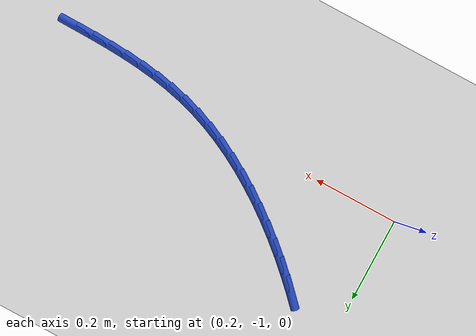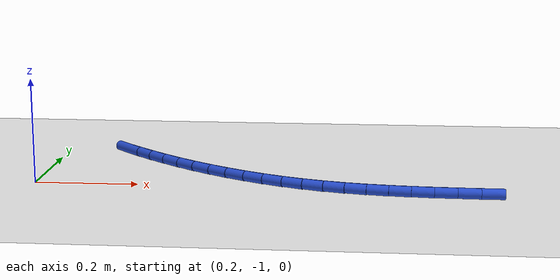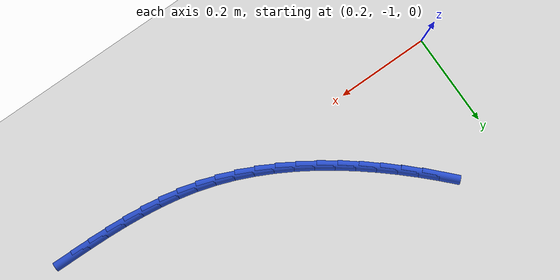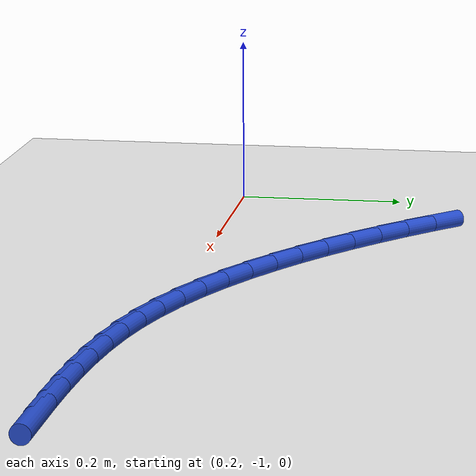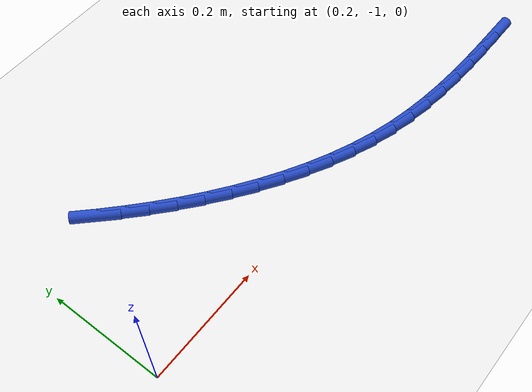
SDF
<sdf version="1.6">
 <world name="default">
  <model name="ground_plane">
   <static>1</static>
   <link name="link">
    <collision name="collision">
     <geometry><plane><normal>0 0 1</normal><size>100 100</size></plane></geometry>
     <surface><friction><ode><mu>100</mu><mu2>50</mu2></ode></friction></surface>
    </collision>
    <visual name="visual">
     <cast_shadows>0</cast_shadows>
     <geometry><plane><normal>0 0 1</normal><size>100 100</size></plane></geometry>
     <material>
      <script><uri>file://media/materials/scripts/gazebo.material</uri><name>Gazebo/WhiteGlow</name></script>
     </material>
    </visual>
   </link>
  </model>
  <model name="line">
   <link name="link_121">
    <pose>1.0421312485021128 -1.0469306811774632 0.01 0 1.57 -0.015314025046229819</pose>
    <collision name="collision">
     <geometry><cylinder><radius>0.01</radius><length>0.08</length></cylinder></geometry>
    </collision>
    <visual name="visual">
     <material>
      <script><name>Gazebo/Blue</name><uri>file://media/materials/scripts/gazebo.material</uri></script>
     </material>
     <geometry><cylinder><radius>0.01</radius><length>0.08</length></cylinder></geometry>
    </visual>
   </link>
   <link name="link_122">
    <pose>0.9992455662872968 -1.0462738774206986 0.01 0 1.57 -0.032252272947527416</pose>
    <collision name="collision">
     <geometry><cylinder><radius>0.01</radius><length>0.08</length></cylinder></geometry>
    </collision>
    <visual name="visual">
     <material>
      <script><name>Gazebo/Blue</name><uri>file://media/materials/scripts/gazebo.material</uri></script>
     </material>
     <geometry><cylinder><radius>0.01</radius><length>0.08</length></cylinder></geometry>
    </visual>
   </link>
   <link name="link_123">
    <pose>0.9570173773594647 -1.0449114499093854 0.01 0 1.57 -0.05647670382661493</pose>
    <collision name="collision">
     <geometry><cylinder><radius>0.01</radius><length>0.08</length></cylinder></geometry>
    </collision>
    <visual name="visual">
     <material>
      <script><name>Gazebo/Blue</name><uri>file://media/materials/scripts/gazebo.material</uri></script>
     </material>
     <geometry><cylinder><radius>0.01</radius><length>0.08</length></cylinder></geometry>
    </visual>
   </link>
   <link name="link_124">
    <pose>0.915423837743727 -1.0425598831596632 0.01 0 1.57 -0.08820557675756319</pose>
    <collision name="collision">
     <geometry><cylinder><radius>0.01</radius><length>0.08</length></cylinder></geometry>
    </collision>
    <visual name="visual">
     <material>
      <script><name>Gazebo/Blue</name><uri>file://media/materials/scripts/gazebo.material</uri></script>
     </material>
     <geometry><cylinder><radius>0.01</radius><length>0.08</length></cylinder></geometry>
    </visual>
   </link>
   <link name="link_125">
    <pose>0.8744421034651939 -1.03893566168767 0.01 0 1.57 -0.12755415599769165</pose>
    <collision name="collision">
     <geometry><cylinder><radius>0.01</radius><length>0.08</length></cylinder></geometry>
    </collision>
    <visual name="visual">
     <material>
      <script><name>Gazebo/Blue</name><uri>file://media/materials/scripts/gazebo.material</uri></script>
     </material>
     <geometry><cylinder><radius>0.01</radius><length>0.08</length></cylinder></geometry>
    </visual>
   </link>
   <link name="link_126">
    <pose>0.8340493305489746 -1.0337552700095438 0.01 0 1.57 -0.17447359039927743</pose>
    <collision name="collision">
     <geometry><cylinder><radius>0.01</radius><length>0.08</length></cylinder></geometry>
    </collision>
    <visual name="visual">
     <material>
      <script><name>Gazebo/Blue</name><uri>file://media/materials/scripts/gazebo.material</uri></script>
     </material>
     <geometry><cylinder><radius>0.01</radius><length>0.08</length></cylinder></geometry>
    </visual>
   </link>
   <link name="link_127">
    <pose>0.7942226750201805 -1.026735192641424 0.01 0 1.57 -0.22868037106302178</pose>
    <collision name="collision">
     <geometry><cylinder><radius>0.01</radius><length>0.08</length></cylinder></geometry>
    </collision>
    <visual name="visual">
     <material>
      <script><name>Gazebo/Blue</name><uri>file://media/materials/scripts/gazebo.material</uri></script>
     </material>
     <geometry><cylinder><radius>0.01</radius><length>0.08</length></cylinder></geometry>
    </visual>
   </link>
   <link name="link_128">
    <pose>0.7549392929039216 -1.017591914099449 0.01 0 1.57 -0.2894220742980537</pose>
    <collision name="collision">
     <geometry><cylinder><radius>0.01</radius><length>0.08</length></cylinder></geometry>
    </collision>
    <visual name="visual">
     <material>
      <script><name>Gazebo/Blue</name><uri>file://media/materials/scripts/gazebo.material</uri></script>
     </material>
     <geometry><cylinder><radius>0.01</radius><length>0.08</length></cylinder></geometry>
    </visual>
   </link>
   <link name="link_129">
    <pose>0.716177366308374 -1.0060492517400126 0.01 0 1.57 -0.3514124167993414</pose>
    <collision name="collision">
     <geometry><cylinder><radius>0.01</radius><length>0.08</length></cylinder></geometry>
    </collision>
    <visual name="visual">
     <material>
      <script><name>Gazebo/Blue</name><uri>file://media/materials/scripts/gazebo.material</uri></script>
     </material>
     <geometry><cylinder><radius>0.01</radius><length>0.08</length></cylinder></geometry>
    </visual>
   </link>
   <link name="link_130">
    <pose>0.6779431206421909 -0.9920314326615823 0.01 0 1.57 -0.4094763573583254</pose>
    <collision name="collision">
     <geometry><cylinder><radius>0.01</radius><length>0.08</length></cylinder></geometry>
    </collision>
    <visual name="visual">
     <material>
      <script><name>Gazebo/Blue</name><uri>file://media/materials/scripts/gazebo.material</uri></script>
     </material>
     <geometry><cylinder><radius>0.01</radius><length>0.08</length></cylinder></geometry>
    </visual>
   </link>
   <link name="link_131">
    <pose>0.6402735406979908 -0.9756825040302396 0.01 0 1.57 -0.46346600192353177</pose>
    <collision name="collision">
     <geometry><cylinder><radius>0.01</radius><length>0.08</length></cylinder></geometry>
    </collision>
    <visual name="visual">
     <material>
      <script><name>Gazebo/Blue</name><uri>file://media/materials/scripts/gazebo.material</uri></script>
     </material>
     <geometry><cylinder><radius>0.01</radius><length>0.08</length></cylinder></geometry>
    </visual>
   </link>
   <link name="link_132">
    <pose>0.6032071820238745 -0.9571577383206168 0.01 0 1.57 -0.5135670640371286</pose>
    <collision name="collision">
     <geometry><cylinder><radius>0.01</radius><length>0.08</length></cylinder></geometry>
    </collision>
    <visual name="visual">
     <material>
      <script><name>Gazebo/Blue</name><uri>file://media/materials/scripts/gazebo.material</uri></script>
     </material>
     <geometry><cylinder><radius>0.01</radius><length>0.08</length></cylinder></geometry>
    </visual>
   </link>
   <link name="link_133">
    <pose>0.5667826001679405 -0.9366124080073451 0.01 0 1.57 -0.5600157013868157</pose>
    <collision name="collision">
     <geometry><cylinder><radius>0.01</radius><length>0.08</length></cylinder></geometry>
    </collision>
    <visual name="visual">
     <material>
      <script><name>Gazebo/Blue</name><uri>file://media/materials/scripts/gazebo.material</uri></script>
     </material>
     <geometry><cylinder><radius>0.01</radius><length>0.08</length></cylinder></geometry>
    </visual>
   </link>
   <link name="link_134">
    <pose>0.5310383506782882 -0.9142017855650567 0.01 0 1.57 -0.6030760952868236</pose>
    <collision name="collision">
     <geometry><cylinder><radius>0.01</radius><length>0.08</length></cylinder></geometry>
    </collision>
    <visual name="visual">
     <material>
      <script><name>Gazebo/Blue</name><uri>file://media/materials/scripts/gazebo.material</uri></script>
     </material>
     <geometry><cylinder><radius>0.01</radius><length>0.08</length></cylinder></geometry>
    </visual>
   </link>
   <link name="link_135">
    <pose>0.49601298910301694 -0.890081143468383 0.01 0 1.57 -0.6430237699057569</pose>
    <collision name="collision">
     <geometry><cylinder><radius>0.01</radius><length>0.08</length></cylinder></geometry>
    </collision>
    <visual name="visual">
     <material>
      <script><name>Gazebo/Blue</name><uri>file://media/materials/scripts/gazebo.material</uri></script>
     </material>
     <geometry><cylinder><radius>0.01</radius><length>0.08</length></cylinder></geometry>
    </visual>
   </link>
   <link name="link_136">
    <pose>0.46174507099022544 -0.8644057541919552 0.01 0 1.57 -0.6801339415768802</pose>
    <collision name="collision">
     <geometry><cylinder><radius>0.01</radius><length>0.08</length></cylinder></geometry>
    </collision>
    <visual name="visual">
     <material>
      <script><name>Gazebo/Blue</name><uri>file://media/materials/scripts/gazebo.material</uri></script>
     </material>
     <geometry><cylinder><radius>0.01</radius><length>0.08</length></cylinder></geometry>
    </visual>
   </link>
   <link name="link_137">
    <pose>0.42827315188801407 -0.8373308902104061 0.01 0 1.57 -0.7146739435697675</pose>
    <collision name="collision">
     <geometry><cylinder><radius>0.01</radius><length>0.08</length></cylinder></geometry>
    </collision>
    <visual name="visual">
     <material>
      <script><name>Gazebo/Blue</name><uri>file://media/materials/scripts/gazebo.material</uri></script>
     </material>
     <geometry><cylinder><radius>0.01</radius><length>0.08</length></cylinder></geometry>
    </visual>
   </link>
   <link name="link_138">
    <pose>0.3956357873444816 -0.8090118239983672 0.01 0 1.57 -0.7468987754036813</pose>
    <collision name="collision">
     <geometry><cylinder><radius>0.01</radius><length>0.08</length></cylinder></geometry>
    </collision>
    <visual name="visual">
     <material>
      <script><name>Gazebo/Blue</name><uri>file://media/materials/scripts/gazebo.material</uri></script>
     </material>
     <geometry><cylinder><radius>0.01</radius><length>0.08</length></cylinder></geometry>
    </visual>
   </link>
   <link name="link_139">
    <pose>0.36387153290772734 -0.7796038280304699 0.01 0 1.57 -0.7770489520433108</pose>
    <collision name="collision">
     <geometry><cylinder><radius>0.01</radius><length>0.08</length></cylinder></geometry>
    </collision>
    <visual name="visual">
     <material>
      <script><name>Gazebo/Blue</name><uri>file://media/materials/scripts/gazebo.material</uri></script>
     </material>
     <geometry><cylinder><radius>0.01</radius><length>0.08</length></cylinder></geometry>
    </visual>
   </link>
   <link name="link_140">
    <pose>0.33301894412585065 -0.749262174781346 0.01 0 1.57 -0.805349997234058</pose>
    <collision name="collision">
     <geometry><cylinder><radius>0.01</radius><length>0.08</length></cylinder></geometry>
    </collision>
    <visual name="visual">
     <material>
      <script><name>Gazebo/Blue</name><uri>file://media/materials/scripts/gazebo.material</uri></script>
     </material>
     <geometry><cylinder><radius>0.01</radius><length>0.08</length></cylinder></geometry>
    </visual>
   </link>
  </model>
 </world>
</sdf>
